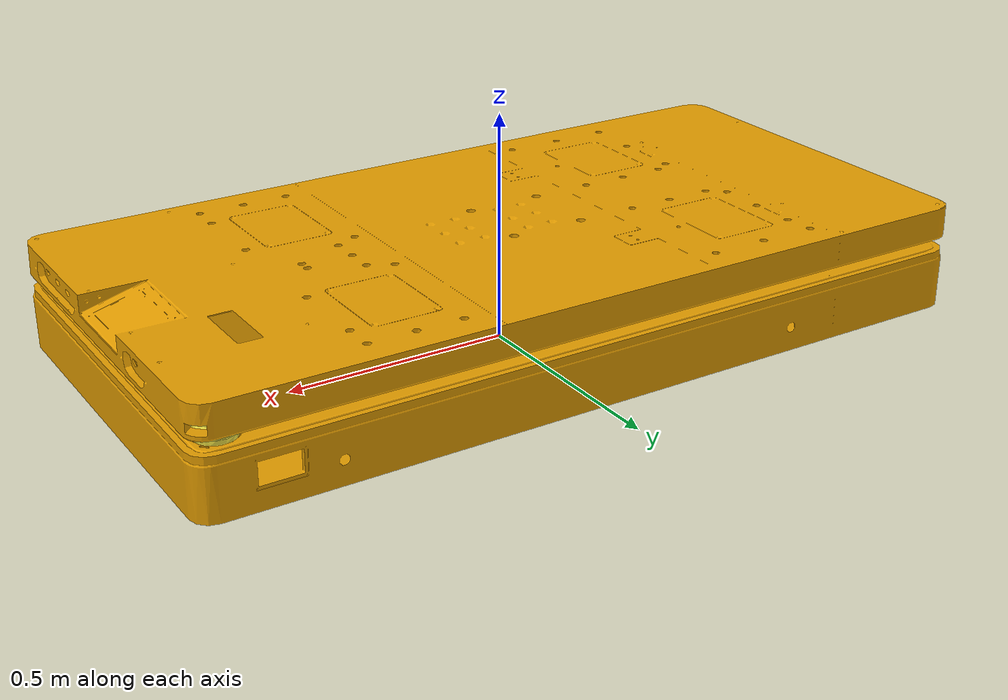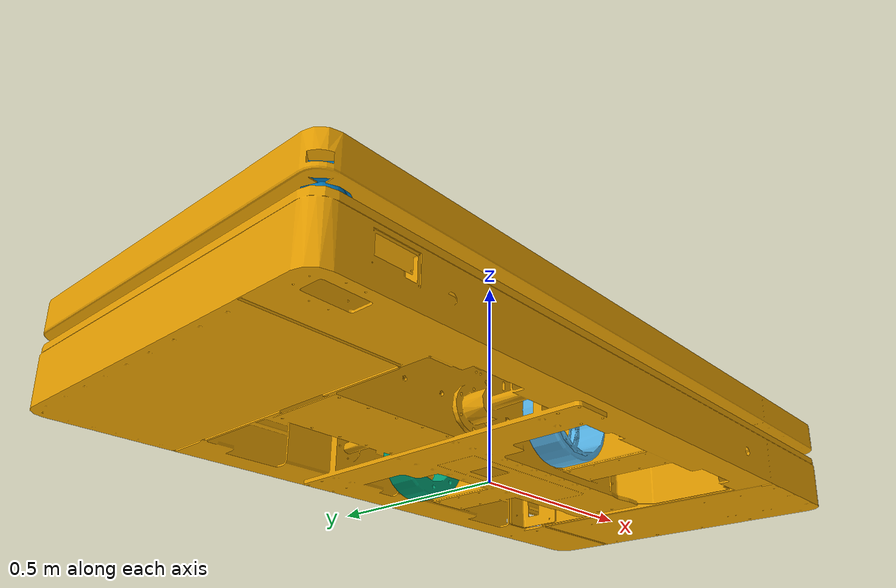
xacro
<?xml version="1.0"?>
<robot name="hamal" xmlns:xacro="http://ros.org/wiki/xacro">

  <!-- AGV Base -->

  <link name="base_link">
    <visual>
      <origin xyz="0 0 0" rpy="0 0 0" />
      <geometry>
        <mesh filename="package://hamal_description/mesh/logos_maxi_base.stl" scale="0.001 0.001 0.001" />
      </geometry>
    </visual>
    <collision>
      <origin xyz="0 0 0" rpy="0 0 0" />
      <geometry>
        <mesh filename="package://hamal_description/mesh/logos_maxi_base.stl" scale="0.001 0.001 0.001" />
      </geometry>
    </collision>
    <inertial>
      <origin xyz="0 0 0" rpy="0 0 0" />
      <mass value="289" />
      <inertia ixx="28.034" ixy="0.669" ixz="-2.355"
        iyy="96.827" iyz="0.232"
        izz="108.149" />
    </inertial>
  </link>

  <!-- Rear Right Mid Wheel Joint  -->
  <joint name="right_wheel_joint" type="continuous">
    <parent link="base_link" />
    <child link="right_wheel_link" />
    <origin xyz="0.0 -0.2235 0.105" rpy="0 0 0" />
    <axis xyz="0 1 0" />
    <dynamics damping="1" friction="0" />
    <limit effort="2" velocity="1.0" />
  </joint>

  <!-- Rear Right Mid Wheel Link  -->
  <link name="right_wheel_link">
    <visual>
      <origin xyz="0 0 0" rpy="0 0 0" />
      <geometry>
        <mesh filename="package://hamal_description/mesh/mid_wheel.stl" scale="0.001 0.001 0.001" />
      </geometry>
    </visual>

    <collision>
      <origin xyz="0 0 0" rpy="0 0 0" />
      <geometry>
        <cylinder length="0.0835" radius="0.105" />
      </geometry>
    </collision>

    <inertial>
      <mass value="1.5" />
      <origin xyz="0 0 0" />
      <inertia ixx="0.006751005" ixy="0.0" ixz="0.000001355"
        iyy="0.011935781" iyz="0.0"
        izz="0.006746312" />
    </inertial>
  </link>

  <!-- Rear Left Mid Wheel Joint  -->
  <joint name="left_wheel_joint" type="continuous">
    <parent link="base_link" />
    <child link="left_wheel_link" />
    <origin xyz="0.0 0.2235 0.105" rpy="0 0 0" />
    <axis xyz="0 1 0" />
    <dynamics damping="1" friction="0" />
    <limit effort="2" velocity="1.0" />
  </joint>

  <!-- Rear Left Mid Wheel Link  -->
  <link name="left_wheel_link">
    <visual>
      <origin xyz="0 0 0" rpy="0 0 3.141592654" />
      <geometry>
        <mesh filename="package://hamal_description/mesh/mid_wheel.stl" scale="0.001 0.001 0.001" />
      </geometry>
    </visual>

    <collision>
      <origin xyz="0 0 0" rpy="0 0 0" />
      <geometry>
        <cylinder length="0.0835" radius="0.105" />
      </geometry>
    </collision>

    <inertial>
      <mass value="1.5" />
      <origin xyz="0 0 0" />
      <inertia ixx="0.006751005" ixy="0.0" ixz="0.000001355"
        iyy="0.011935781" iyz="0.0"
        izz="0.006746312" />
    </inertial>
  </link>

  <!-- Scanner -->
  <!-- Front Scanner -->
  <joint name="front_scan_joint" type="fixed">
    <parent link="base_link" />
    <child link="front_scan_link" />
    <origin xyz="0.80612 0.3712 0.185" rpy="3.141592 0 0.7853981634" />
  </joint>

  <link name="front_scan_link">
    <visual>
      <origin xyz="0 0 0" rpy="0 0 0" />
      <geometry>
        <mesh filename="package://hamal_description/mesh/nanoscan.stl" scale="0.001 0.001 0.001" />
      </geometry>
    </visual>

    <inertial>
      <mass value="0.114" />
      <origin xyz="0 0 0" />
      <inertia ixx="0.001" ixy="0.0" ixz="0.0"
        iyy="0.001" iyz="0.0"
        izz="0.001" />
    </inertial>
  </link>

  <joint name="rear_scan_joint" type="fixed">
    <parent link="base_link" />
    <child link="rear_scan_link" />
    <origin xyz="-0.80612 -0.3712 0.185" rpy="3.141592 0  3.926990817 " />
  </joint>

  <link name="rear_scan_link">
    <visual>
      <origin xyz="0 0 0" rpy="0 0 0" />
      <geometry>
        <mesh filename="package://hamal_description/mesh/nanoscan.stl" scale="0.001 0.001 0.001" />
      </geometry>
    </visual>

    <inertial>
      <mass value="0.114" />
      <origin xyz="0 0 0" />
      <inertia ixx="0.001" ixy="0.0" ixz="0.0"
        iyy="0.001" iyz="0.0"
        izz="0.001" />
    </inertial>
  </link>

  <joint name="lifter_joint" type="prismatic">
    <parent link="base_link"/>
    <child link="lifter_link"/>
    <origin xyz="0 0 0" rpy="0 0 0"/>
    <axis xyz="0 1 0"/>
    <limit effort="1000.0" lower="-0.2" upper="0.2" velocity="0.5"/>
  </joint>

  <link name="lifter_link"></link>

  <joint name="imu_joint" type="fixed">
    <parent link="base_link"></parent>
    <child link="imu_link"></child>
    <origin xyz="0 0 0" rpy="0 0 0"/>
  </joint>
  <link name="imu_link"></link>

  <joint name="camera_joint" type="fixed">
    <parent link="base_link" />
    <child link="camera_link" />
    <origin xyz="0.80612 0.0 0.185" rpy="0 0 0" />
  </joint>

  <link name="camera_link">
    <visual>
      <origin xyz="0 0 0" rpy="0 0 0" />
      <geometry>
        <mesh filename="package://hamal_description/mesh/nanoscan.stl" scale="0.001 0.001 0.001" />
      </geometry>
    </visual>
  </link>
</robot>
